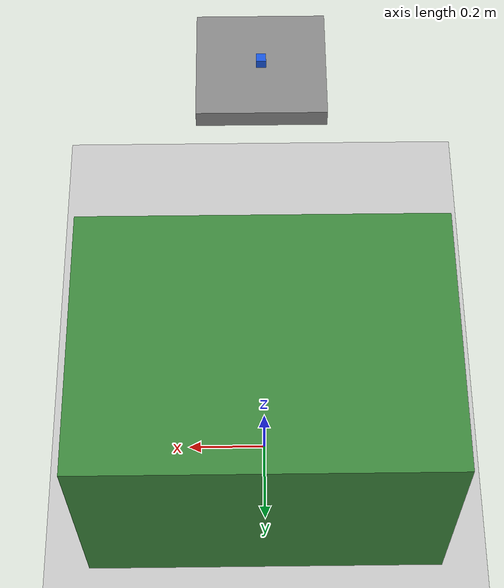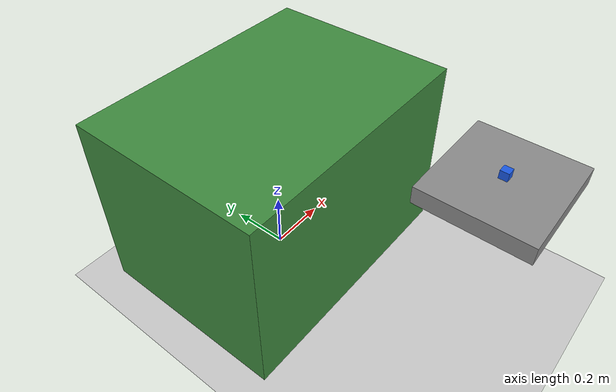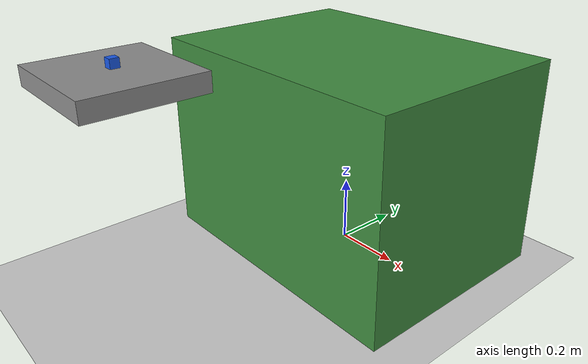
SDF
<?xml version="1.0" ?>
<sdf version="1.6">
  <world name="indy7_pick_place">
    <include>
      <uri>model://sun</uri>
    </include>

    <include>
      <uri>model://ground_plane</uri>
    </include>

    <physics name="default_physics" type="ode">
      <max_step_size>0.001</max_step_size>
      <real_time_update_rate>1000</real_time_update_rate>
      <real_time_factor>1.0</real_time_factor>
    </physics>

    <!--
      robot_stand는 실물에서 Indy7이 올라가는 하부 선반이다.
      pick_place world로 실행할 때 launch에서 로봇 spawn z도 0.634m로
      올려서 link0 기준 task pose와 Gazebo 물체 높이가 맞게 한다.
    -->
    <model name="robot_stand">
      <static>true</static>
      <pose>0.0 0.0 0.317 0 0 0</pose>
      <link name="link">
        <collision name="collision">
          <geometry>
            <box>
              <size>0.90 0.66 0.634</size>
            </box>
          </geometry>
          <surface>
            <friction>
              <ode>
                <mu>1.0</mu>
                <mu2>1.0</mu2>
              </ode>
            </friction>
          </surface>
        </collision>
        <visual name="visual">
          <geometry>
            <box>
              <size>0.90 0.66 0.634</size>
            </box>
          </geometry>
          <material>
            <ambient>0.20 0.45 0.20 1.0</ambient>
            <diffuse>0.25 0.55 0.25 1.0</diffuse>
          </material>
        </visual>
      </link>
    </model>

    <model name="pick_shelf">
      <static>true</static>
      <pose>0.0 -0.72 0.690 0 0 0</pose>
      <link name="link">
        <collision name="collision">
          <geometry>
            <box>
              <size>0.32 0.30 0.05</size>
            </box>
          </geometry>
          <surface>
            <friction>
              <ode>
                <mu>1.0</mu>
                <mu2>1.0</mu2>
              </ode>
            </friction>
          </surface>
        </collision>
        <visual name="visual">
          <geometry>
            <box>
              <size>0.32 0.30 0.05</size>
            </box>
          </geometry>
          <material>
            <ambient>0.45 0.45 0.45 1.0</ambient>
            <diffuse>0.55 0.55 0.55 1.0</diffuse>
          </material>
        </visual>
      </link>
    </model>

    <model name="puzzle_block">
      <static>false</static>
      <pose>0.0 -0.72 0.727 0 0 0</pose>
      <link name="link">
        <inertial>
          <mass>0.05</mass>
          <inertia>
            <ixx>0.0000075</ixx>
            <ixy>0.0</ixy>
            <ixz>0.0</ixz>
            <iyy>0.00001875</iyy>
            <iyz>0.0</iyz>
            <izz>0.00001875</izz>
          </inertia>
        </inertial>
        <collision name="collision">
          <geometry>
            <box>
              <size>0.024 0.024 0.024</size>
            </box>
          </geometry>
          <surface>
            <friction>
              <ode>
                <mu>20.0</mu>
                <mu2>20.0</mu2>
              </ode>
            </friction>
          </surface>
        </collision>
        <visual name="visual">
          <geometry>
            <box>
              <size>0.024 0.024 0.024</size>
            </box>
          </geometry>
          <material>
            <ambient>0.1 0.35 0.9 1.0</ambient>
            <diffuse>0.1 0.35 0.9 1.0</diffuse>
          </material>
        </visual>
      </link>
    </model>
  </world>
</sdf>
